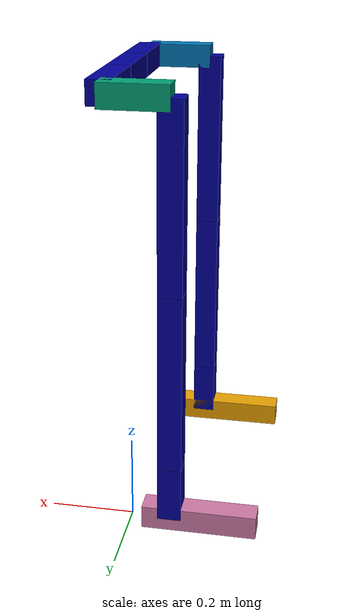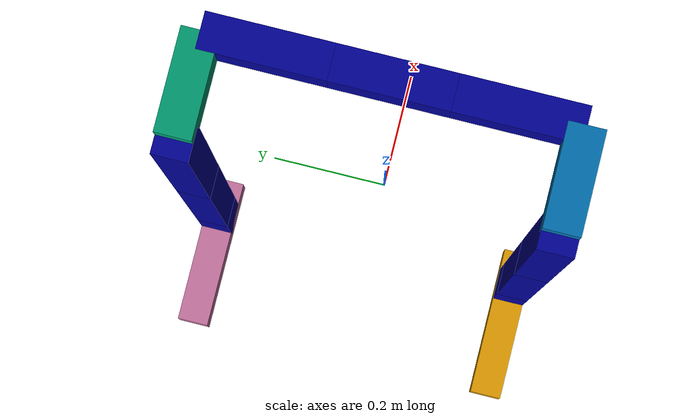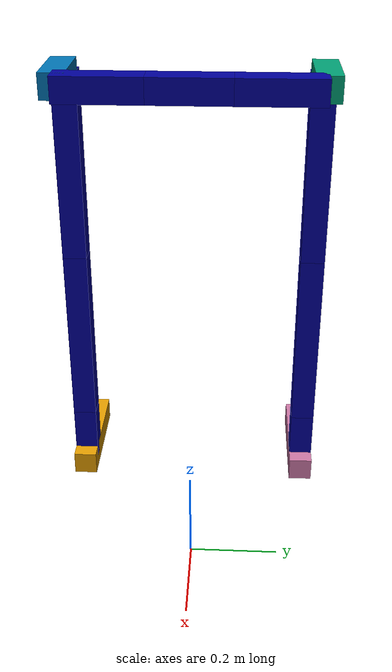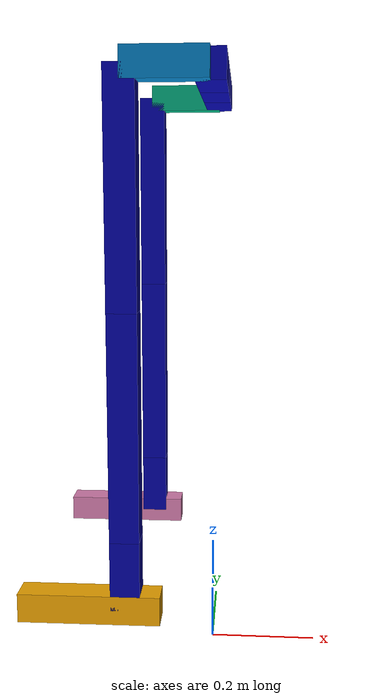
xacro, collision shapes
<?xml version="1.0"?>
<!-- Revolute-Revolute Manipulator -->
<robot name="march" xmlns:xacro="http://www.ros.org/wiki/xacro">
    <!-- Switch between airgaiting or standing on the ground-->
    <!--Value set to: 'world' fixes the robot to the world-->
    <!--Value set to: 'base_link' makes the robot stand on the ground-->
    <!--Important note: when changing value make sure rviz fixed frame is set to the same value (moveit.rviz)-->
    <xacro:property name="parent_name" value="world"/>

    <xacro:arg name="max_effort_rotary" default="20475" />
    <xacro:arg name="max_effort_linear" default="22932.0" />
    <xacro:property name="max_effort_rotary" value="$(arg max_effort_rotary)" />
    <xacro:property name="max_effort_linear" value="$(arg max_effort_linear)" />

    <xacro:arg name="k_velocity_value" default="20000.0" />
    <xacro:property name="k_velocity_value" value="$(arg k_velocity_value)" />

    <!-- Constants for robot dimensions -->
    <!-- Masses determined in https://confluence.projectmarch.nl:8443/display/41TECH/Weights+of+the+Exoskeleton -->
    <xacro:property name="width" value="0.05"/> <!-- Square dimensions (widthxwidth) of beams -->

    <xacro:property name="hip_base_height" value="0.160"/>
    <xacro:property name="hip_base_mass" value="6.089"/>
    <!-- mass = Hip base + HAA actuators -->

    <xacro:property name="hip_aa_frame_height" value="0.170"/>
    <xacro:property name="hip_aa_frame_width" value="0.1395"/>
    <xacro:property name="hip_aa_mass" value="1.407"/>
    <!-- mass = Moving hip -->

    <xacro:property name="upper_leg_height" value="0.385"/>
    <xacro:property name="upper_leg_mass" value="7.238"/>
    <!-- mass = KFE joint + HFE joint + Upper leg -->

    <xacro:property name="lower_leg_height" value="0.385"/>
    <xacro:property name="lower_leg_mass" value="2.944"/>
    <!-- mass = Ankle actuator + Lower leg -->

    <xacro:property name="ankle_plate_height" value="0.12"/>

    <xacro:property name="foot_height_forward" value="${0.184}"/>
    <xacro:property name="foot_height_backward" value="${0.059}"/>
    <xacro:property name="foot_mass" value="0.847"/>
    <!-- mass = Passive ankle + foot -->

    <!-- Center of Mass (CoM) of the parts -->
    <!-- CoM has been determined in Catia, see https://confluence.projectmarch.nl:8443/display/51/URDF+description -->
    <xacro:property name="hip_base_com_x" value="${-hip_aa_frame_width + 0.124786}"/>
    <xacro:property name="hip_base_com_y" value="0.00000911124"/>
    <xacro:property name="hip_base_com_z" value="0.152163"/>

    <xacro:property name="hip_aa_com_x" value="${-hip_aa_frame_width + 0.0669488}"/>
    <xacro:property name="hip_aa_com_y" value="${-hip_base_height/2 - hip_aa_frame_height + 0.210566}"/>
    <xacro:property name="hip_aa_com_z" value="-0.000250494"/>

    <xacro:property name="upper_leg_com_x" value="-0.00219961"/>
    <xacro:property name="upper_leg_com_y" value="${-hip_base_height/2 - hip_aa_frame_height + 0.221535}"/>
    <xacro:property name="upper_leg_com_z" value="-0.184207"/>

    <xacro:property name="lower_leg_com_x" value="-0.00434063"/>
    <xacro:property name="lower_leg_com_y" value="${-hip_base_height/2 - hip_aa_frame_height + 0.184583}"/>
    <xacro:property name="lower_leg_com_z" value="${upper_leg_height - 0.511661}"/>

    <xacro:property name="foot_com_x" value="-0.0450791"/>
    <xacro:property name="foot_com_y" value="${-hip_base_height/2 - hip_aa_frame_height + 0.147081}"/>
    <xacro:property name="foot_com_z" value="${upper_leg_height + lower_leg_height + ankle_plate_height - 0.844751}"/>

    <!-- Inertia of the parts -->
    <!-- Inertia's have been determined in Catia, see
         https://confluence.projectmarch.nl:8443/display/51/URDF+description -->
    <xacro:property name="hip_base_Ixx" value="0.117325"/>
    <xacro:property name="hip_base_Ixy" value="-0.0000239249"/>
    <xacro:property name="hip_base_Ixz" value="0.0179732"/>
    <xacro:property name="hip_base_Iyy" value="0.0745937"/>
    <xacro:property name="hip_base_Iyz" value="-0.00000472801"/>
    <xacro:property name="hip_base_Izz" value="0.0684134"/>

    <xacro:property name="hip_aa_Ixx" value="0.00841686"/>
    <xacro:property name="hip_aa_Ixy" value="0.00655578"/>
    <xacro:property name="hip_aa_Ixz" value="0.0000910634"/>
    <xacro:property name="hip_aa_Iyy" value="0.0165504"/>
    <xacro:property name="hip_aa_Iyz" value="0.0000996411"/>
    <xacro:property name="hip_aa_Izz" value="0.0229261"/>

    <xacro:property name="upper_leg_Ixx" value="0.119187"/>
    <xacro:property name="upper_leg_Ixy" value="-0.0000363676"/>
    <xacro:property name="upper_leg_Ixz" value="-0.0000393791"/>
    <xacro:property name="upper_leg_Iyy" value="0.11867"/>
    <xacro:property name="upper_leg_Iyz" value="-0.0125652"/>
    <xacro:property name="upper_leg_Izz" value="0.00881972"/>

    <xacro:property name="lower_leg_Ixx" value="0.0725438"/>
    <xacro:property name="lower_leg_Ixy" value="-0.0264923"/>
    <xacro:property name="lower_leg_Ixz" value="0.00934723"/>
    <xacro:property name="lower_leg_Iyy" value="0.108683"/>
    <xacro:property name="lower_leg_Iyz" value="0.00109811"/>
    <xacro:property name="lower_leg_Izz" value="0.0715361" />

    <xacro:property name="foot_Ixx" value="0.00414758"/>
    <xacro:property name="foot_Ixy" value="-0.00185339"/>
    <xacro:property name="foot_Ixz" value="-0.00254464"/>
    <xacro:property name="foot_Iyy" value="0.00855883"/>
    <xacro:property name="foot_Iyz" value="-0.00166213"/>
    <xacro:property name="foot_Izz" value="0.00715736" />

    <!-- Joint properties -->
    <xacro:property name="hip_fe_rotation_lower_limit" value="${-20*pi/180}"/> <!-- rad -->
    <xacro:property name="hip_fe_rotation_upper_limit" value="${100*pi/180}"/> <!-- rad -->
    <xacro:property name="hip_fe_soft_buffer" value="${3*pi/180}"/> <!-- rad -->
    <xacro:property name="hip_fe_effort_limit" value="${max_effort_rotary}"/> <!-- IU = 20 A -->
    <xacro:property name="hip_fe_velocity_limit" value="2.0"/> <!-- rad/s -->

    <xacro:property name="hip_aa_rotation_lower_limit" value="${-18*pi/180}"/> <!-- rad -->
    <xacro:property name="hip_aa_rotation_upper_limit" value="${17*pi/180}"/> <!-- rad -->
    <xacro:property name="hip_aa_soft_buffer" value="${3.5*pi/180}"/> <!-- rad -->
    <xacro:property name="hip_aa_effort_limit" value="${max_effort_linear}"/> <!-- IU = 20 A -->
    <xacro:property name="hip_aa_velocity_limit" value="1.0"/> <!-- rad/s -->

    <xacro:property name="knee_rotation_lower_limit" value="${-5*pi/180}"/>
    <xacro:property name="knee_rotation_upper_limit" value="${115*pi/180}"/>
    <xacro:property name="knee_extension_soft_buffer" value="${3.5*pi/180}"/> <!-- rad -->
    <xacro:property name="knee_flexion_soft_buffer" value="${3*pi/180}"/> <!-- rad -->
    <xacro:property name="knee_effort_limit" value="${max_effort_rotary}"/> <!-- IU = 20 A -->
    <xacro:property name="knee_velocity_limit" value="2.5"/>

    <xacro:property name="ankle_rotation_lower_limit" value="${-25*pi/180}"/>
    <xacro:property name="ankle_rotation_upper_limit" value="${15*pi/180}"/>
    <xacro:property name="ankle_dorsalflexion_soft_buffer" value="${5*pi/180}"/> <!-- rad -->
    <xacro:property name="ankle_plantarflexion_soft_buffer" value="${3*pi/180}"/> <!-- rad -->
    <xacro:property name="ankle_effort_limit" value="${max_effort_linear}"/> <!-- IU = 20 A -->
    <xacro:property name="ankle_velocity_limit" value="1.0"/>

    <xacro:property name="hover_height" value="0.3"/>

    <xacro:property name="camera_link" value="0.05"/> <!-- Size of square 'camera' box -->
    <xacro:property name="axel_offset" value="0.05"/> <!-- Space btw top of beam and the each joint -->

    <!-- Import all Gazebo-customization elements, including Gazebo colors -->
    <xacro:include filename="$(find march_description)/urdf/march.gazebo"/>

    <material name="blue">
        <color rgba="0 0 0.6 1"/>
    </material>

    <plugin name="gazebo_ros_control" filename="libgazebo_ros_control.so">
        <robotNamespace>/march</robotNamespace>
    </plugin>

    <!-- Used for fixing robot to Gazebo 'base_link' -->
    <link name="${parent_name}"/>

    <!-- Parts -->
    <!-- Hip-->
    <link name="hip_base">
        <visual>
            <origin xyz="0 0 0" rpy="0 0 ${-pi/2}"/>
            <geometry>
                <mesh filename="package://march_description/urdf/stl-files/HipBase.stl" scale="1.15 1.15 1.15"/>
            </geometry>
            <material name="blue"/>
        </visual>

        <inertial>
            <origin xyz="${hip_base_com_x} ${hip_base_com_y} ${hip_base_com_z}" rpy="0 0 0"/>
            <mass value="${hip_base_mass}"/>
            <inertia
                    ixx="${hip_base_Ixx}"
                    ixy="${hip_base_Ixy}"
                    ixz="${hip_base_Ixz}"
                    iyy="${hip_base_Iyy}"
                    iyz="${hip_base_Iyz}"
                    izz="${hip_base_Izz}" />
        </inertial>

        <collision>
            <origin xyz="0 0 0" rpy="0 0 0"/>
            <geometry>
                <box size="${width} ${hip_base_height} ${width}"/>
            </geometry>
        </collision>
    </link>

    <!-- IMU-->
    <link name="imu_link">
    </link>

    <!-- Left Moving Hip-->
    <link name="hip_aa_frame_left_side">
        <visual>
            <origin xyz="0 0 0" rpy="0 0 ${-pi/2}"/>
            <geometry>
                <mesh filename="package://march_description/urdf/stl-files/HipLeft.stl" scale="1.15 1.15 1.15"/>
            </geometry>
            <material name="blue"/>
        </visual>

        <collision>
            <origin xyz="0 ${-hip_aa_frame_height/2} 0" rpy="0 0 0"/>
            <geometry>
                <box size="${width} ${hip_aa_frame_height} ${width}"/>
            </geometry>
        </collision>
    </link>

    <link name="hip_aa_frame_left_front">
        <inertial>
            <origin xyz="${hip_aa_com_x} ${-hip_aa_com_y} ${hip_aa_com_z}" rpy="0 0 0"/>
            <mass value="${hip_aa_mass}"/>
            <inertia
                    ixx="${hip_aa_Ixx}"
                    ixy="${-hip_aa_Ixy}"
                    ixz="${hip_aa_Ixz}"
                    iyy="${hip_aa_Iyy}"
                    iyz="${-hip_aa_Iyz}"
                    izz="${hip_aa_Izz}" />
        </inertial>

        <collision>
            <origin xyz="${-hip_aa_frame_width/2} 0 0" rpy="0 0 0"/>
            <geometry>
                <box size="${hip_aa_frame_width} ${width} ${width}"/>
            </geometry>
        </collision>
    </link>

    <!-- Upper Leg Left-->
    <link name="upper_leg_left">
        <visual>
            <origin xyz="0 0 0" rpy="0 0 ${-pi/2}"/>
            <geometry>
                <mesh filename="package://march_description/urdf/stl-files/UpperLegLeft.stl" scale="1.15 1.15 1.15"/>
            </geometry>
            <material name="blue"/>
        </visual>

        <inertial>
            <origin xyz="${upper_leg_com_x} ${-upper_leg_com_y} ${upper_leg_com_z}" rpy="0 0 0"/>
            <mass value="${upper_leg_mass}"/>
            <inertia
                    ixx="${upper_leg_Ixx}"
                    ixy="${-upper_leg_Ixy}"
                    ixz="${upper_leg_Ixz}"
                    iyy="${upper_leg_Iyy}"
                    iyz="${-upper_leg_Iyz}"
                    izz="${upper_leg_Izz}" />
        </inertial>

        <collision>
            <origin xyz="0 0 ${-upper_leg_height/2}" rpy="0 0 0"/>
            <geometry>
                <box size="${width} ${width} ${upper_leg_height}"/>
            </geometry>
        </collision>
    </link>

    <!-- Lower Leg Left -->
    <link name="lower_leg_left">
        <visual>
            <origin xyz="0 0 0" rpy="0 0 ${-pi/2}"/>
            <geometry>
                <mesh filename="package://march_description/urdf/stl-files/LowerLegLeft.stl" scale="1.15 1.15 1.15"/>
            </geometry>
            <material name="blue"/>
        </visual>

        <inertial>
            <origin xyz="${lower_leg_com_x} ${-lower_leg_com_y} ${lower_leg_com_z}" rpy="0 0 0"/>
            <mass value="${lower_leg_mass}"/>
            <inertia
                    ixx="${lower_leg_Ixx}"
                    ixy="${-lower_leg_Ixy}"
                    ixz="${lower_leg_Ixz}"
                    iyy="${lower_leg_Iyy}"
                    iyz="${-lower_leg_Iyz}"
                    izz="${lower_leg_Izz}" />
        </inertial>

        <collision>
            <origin xyz="0 0 ${-lower_leg_height/2}" rpy="0 0 0"/>
            <geometry>
                <box size="${width} ${width} ${lower_leg_height}"/>
            </geometry>
        </collision>
    </link>

    <!-- Ankle plate Left -->
    <link name="ankle_plate_left">
        <visual>
            <origin xyz="0 0 0" rpy="0 0 ${-pi/2}"/>
            <geometry>
                <mesh filename="package://march_description/urdf/stl-files/FootLeft.stl" scale="1.15 1.15 1.15"/>
            </geometry>
            <material name="blue"/>
        </visual>

        <collision>
            <origin xyz="0 0 ${-ankle_plate_height/2}" rpy="0 0 0"/>
            <geometry>
                <box size="${width} ${width} ${ankle_plate_height}"/>
            </geometry>
        </collision>
    </link>

    <!-- Foot Left -->
    <link name="foot_left">
        <inertial>
            <origin xyz="${foot_com_x} ${-foot_com_y} ${foot_com_z}" rpy="0 0 0"/>
            <mass value="${foot_mass}"/>
            <inertia
                    ixx="${foot_Ixx}"
                    ixy="${-foot_Ixy}"
                    ixz="${foot_Ixz}"
                    iyy="${foot_Iyy}"
                    iyz="${-foot_Iyz}"
                    izz="${foot_Izz}" />
        </inertial>

        <collision>
            <origin xyz="${(-foot_height_forward+foot_height_backward)/2} 0 0" rpy="0 0 0"/>
            <geometry>
                <box size="${foot_height_forward+foot_height_backward} ${width} ${width}"/>
            </geometry>
        </collision>
    </link>

    <!-- Right Moving Hip-->
    <link name="hip_aa_frame_right_side">
        <visual>
            <origin xyz="0 0 0" rpy="0 0 ${-pi/2}"/>
            <geometry>
                <mesh filename="package://march_description/urdf/stl-files/HipRight.stl" scale="1.15 1.15 1.15"/>
            </geometry>
            <material name="blue"/>
        </visual>

        <collision>
            <origin xyz="0 ${hip_aa_frame_height/2} 0" rpy="0 0 0"/>
            <geometry>
                <box size="${width} ${hip_aa_frame_height} ${width}"/>
            </geometry>
        </collision>
    </link>

    <link name="hip_aa_frame_right_front">
        <inertial>
            <origin xyz="${hip_aa_com_x} ${hip_aa_com_y} ${hip_aa_com_z}" rpy="0 0 0"/>
            <mass value="${hip_aa_mass}"/>
            <inertia
                    ixx="${hip_aa_Ixx}"
                    ixy="${hip_aa_Ixy}"
                    ixz="${hip_aa_Ixz}"
                    iyy="${hip_aa_Iyy}"
                    iyz="${hip_aa_Iyz}"
                    izz="${hip_aa_Izz}" />
        </inertial>

        <collision>
            <origin xyz="${-hip_aa_frame_width/2} 0 0" rpy="0 0 0"/>
            <geometry>
                <box size="${hip_aa_frame_width} ${width} ${width}"/>
            </geometry>
        </collision>
    </link>

    <!-- Upper Leg Right-->
    <link name="upper_leg_right">
        <visual>
            <origin xyz="0 0 0" rpy="0 0 ${-pi/2}"/>
            <geometry>
                <mesh filename="package://march_description/urdf/stl-files/UpperLegRight.stl" scale="1.15 1.15 1.15"/>
            </geometry>
            <material name="blue"/>
        </visual>

        <inertial>
            <origin xyz="${upper_leg_com_x} ${upper_leg_com_y} ${upper_leg_com_z}" rpy="0 0 0"/>
            <mass value="${upper_leg_mass}"/>
            <inertia
                    ixx="${upper_leg_Ixx}"
                    ixy="${upper_leg_Ixy}"
                    ixz="${upper_leg_Ixz}"
                    iyy="${upper_leg_Iyy}"
                    iyz="${upper_leg_Iyz}"
                    izz="${upper_leg_Izz}" />
        </inertial>

        <collision>
            <origin xyz="0 0 ${-upper_leg_height/2}" rpy="0 0 0"/>
            <geometry>
                <box size="${width} ${width} ${upper_leg_height}"/>
            </geometry>
        </collision>

    </link>

    <!-- Lower Leg Right -->
    <link name="lower_leg_right">
        <visual>
            <origin xyz="0 0 0" rpy="0 0 ${-pi/2}"/>
            <geometry>
                <mesh filename="package://march_description/urdf/stl-files/LowerLegRight.stl" scale="1.15 1.15 1.15"/>
            </geometry>
            <material name="blue"/>
        </visual>

        <inertial>
            <origin xyz="${lower_leg_com_x} ${lower_leg_com_y} ${lower_leg_com_z}" rpy="0 0 0"/>
            <mass value="${lower_leg_mass}"/>
            <inertia
                    ixx="${lower_leg_Ixx}"
                    ixy="${lower_leg_Ixy}"
                    ixz="${lower_leg_Ixz}"
                    iyy="${lower_leg_Iyy}"
                    iyz="${lower_leg_Iyz}"
                    izz="${lower_leg_Izz}" />
        </inertial>

        <collision>
            <origin xyz="0 0 ${-lower_leg_height/2}" rpy="0 0 0"/>
            <geometry>
                <box size="${width} ${width} ${lower_leg_height}"/>
            </geometry>
        </collision>
    </link>

    <!-- Ankle Plate Right -->
    <link name="ankle_plate_right">
        <visual>
            <origin xyz="0 0 0" rpy="0 0 ${-pi/2}"/>
            <geometry>
                <mesh filename="package://march_description/urdf/stl-files/FootRight.stl" scale="1.15 1.15 1.15"/>
            </geometry>
            <material name="blue"/>
        </visual>

        <collision>
            <origin xyz="0 0 ${-ankle_plate_height/2}" rpy="0 0 0"/>
            <geometry>
                <box size="${width} ${width} ${ankle_plate_height}"/>
            </geometry>
        </collision>
    </link>

    <!-- Foot Right -->
    <link name="foot_right">
        <inertial>
            <origin xyz="${foot_com_x} ${foot_com_y} ${foot_com_z}" rpy="0 0 0"/>
            <mass value="${foot_mass}"/>
            <inertia
                    ixx="${foot_Ixx}"
                    ixy="${foot_Ixy}"
                    ixz="${foot_Ixz}"
                    iyy="${foot_Iyy}"
                    iyz="${foot_Iyz}"
                    izz="${foot_Izz}" />
        </inertial>
        <collision>
            <origin xyz="${(-foot_height_forward+foot_height_backward)/2} 0 0" rpy="0 0 0"/>
            <geometry>
                <box size="${foot_height_forward+foot_height_backward} ${width} ${width}"/>
            </geometry>
        </collision>
    </link>

    <!-- Joints -->
    <joint name="imu_joint" type="fixed">
        <parent link="${parent_name}"/>
        <child link="imu_link"/>
    </joint>

    <joint name="hip" type="fixed">
        <parent link="imu_link"/>
        <child link="hip_base"/>
        <origin xyz="0 0 ${lower_leg_height+upper_leg_height+hover_height}" rpy="0 0 0"/>
    </joint>

    <joint name="left_hip_aa" type="revolute">
        <parent link="hip_base"/>
        <child link="hip_aa_frame_left_side"/>
        <origin xyz="0 ${-hip_base_height/2} 0" rpy="0 0 0"/>
        <axis xyz="-1 0 0"/>
        <limit velocity="${hip_aa_velocity_limit}" effort="${hip_aa_effort_limit}" lower="${hip_aa_rotation_lower_limit}" upper="${hip_aa_rotation_upper_limit}"/>
        <safety_controller soft_lower_limit="${hip_aa_rotation_lower_limit + hip_aa_soft_buffer}" soft_upper_limit="${hip_aa_rotation_upper_limit - hip_aa_soft_buffer}" k_position="5" k_velocity="${k_velocity_value}" />

    </joint>

    <joint name="left_hip_angle" type="fixed">
        <parent link="hip_aa_frame_left_side"/>
        <child link="hip_aa_frame_left_front"/>
        <origin xyz="0 ${-hip_aa_frame_height} 0" rpy="0 0 0"/>
    </joint>

    <joint name="left_hip_fe" type="revolute">
        <parent link="hip_aa_frame_left_front"/>
        <child link="upper_leg_left"/>
        <origin xyz="${-hip_aa_frame_width} 0 0" rpy="0 0 0"/>
        <axis xyz="0 1 0"/>

        <limit velocity="${hip_fe_velocity_limit}" effort="${hip_fe_effort_limit}" lower="${hip_fe_rotation_lower_limit}" upper="${hip_fe_rotation_upper_limit}"/>
        <safety_controller soft_lower_limit="${hip_fe_rotation_lower_limit + hip_fe_soft_buffer}" soft_upper_limit="${hip_fe_rotation_upper_limit - hip_fe_soft_buffer}" k_position="5" k_velocity="${k_velocity_value}" />
    </joint>

    <joint name="left_knee" type="revolute">
        <parent link= "upper_leg_left"/>
        <child link="lower_leg_left"/>
        <origin xyz="0 0 ${-upper_leg_height}" rpy="0 0 0"/>
        <axis xyz="0 -1 0"/>

        <limit velocity="${knee_velocity_limit}" effort="${knee_effort_limit}" lower="${knee_rotation_lower_limit}" upper="${knee_rotation_upper_limit}"/>
        <safety_controller soft_lower_limit="${knee_rotation_lower_limit + knee_extension_soft_buffer}" soft_upper_limit="${knee_rotation_upper_limit - knee_flexion_soft_buffer}" k_position="5" k_velocity="${k_velocity_value}" />
    </joint>

    <joint name="left_ankle" type="revolute">
        <parent link="lower_leg_left"/>
        <child link="ankle_plate_left"/>
        <origin xyz="0 0 ${-lower_leg_height}" rpy="0 0 0"/>
        <axis xyz="0 1 0"/>

        <limit velocity="${ankle_velocity_limit}" effort="${ankle_effort_limit}" lower="${ankle_rotation_lower_limit}" upper="${ankle_rotation_upper_limit}"/>
        <safety_controller soft_lower_limit="${ankle_rotation_lower_limit + ankle_plantarflexion_soft_buffer}" soft_upper_limit="${ankle_rotation_upper_limit - ankle_dorsalflexion_soft_buffer}" k_position="5" k_velocity="${k_velocity_value}" />
    </joint>

    <joint name="left_foot_angle" type="fixed">
        <parent link="ankle_plate_left"/>
        <child link="foot_left"/>
        <origin xyz="0 0 ${-ankle_plate_height}" rpy="0 0 0"/>
    </joint>

    <joint name="right_hip_aa" type="revolute">
        <parent link="hip_base"/>
        <child link="hip_aa_frame_right_side"/>
        <origin xyz="0 ${hip_base_height/2} 0" rpy="0 0 0"/>
        <axis xyz="1 0 0"/>

        <limit velocity="${hip_aa_velocity_limit}" effort="${hip_aa_effort_limit}" lower="${hip_aa_rotation_lower_limit}" upper="${hip_aa_rotation_upper_limit}"/>
        <safety_controller soft_lower_limit="${hip_aa_rotation_lower_limit + hip_aa_soft_buffer}" soft_upper_limit="${hip_aa_rotation_upper_limit - hip_aa_soft_buffer}" k_position="5" k_velocity="${k_velocity_value}" />

    </joint>

    <joint name="right_hip_angle" type="fixed">
        <parent link="hip_aa_frame_right_side"/>
        <child link="hip_aa_frame_right_front"/>
        <origin xyz="0 ${hip_aa_frame_height} 0" rpy="0 0 0"/>
    </joint>

    <joint name="right_hip_fe" type="revolute">
        <parent link="hip_aa_frame_right_front"/>
        <child link="upper_leg_right"/>
        <origin xyz="${-hip_aa_frame_width} 0 0" rpy="0 0 0"/>
        <axis xyz="0 1 0"/>

        <limit velocity="${hip_fe_velocity_limit}" effort="${hip_fe_effort_limit}" lower="${hip_fe_rotation_lower_limit}" upper="${hip_fe_rotation_upper_limit}"/>
        <safety_controller soft_lower_limit="${hip_fe_rotation_lower_limit + hip_fe_soft_buffer}" soft_upper_limit="${hip_fe_rotation_upper_limit - hip_fe_soft_buffer}" k_position="5" k_velocity="${k_velocity_value}" />

    </joint>

    <joint name="right_knee" type="revolute">
        <parent link="upper_leg_right"/>
        <child link="lower_leg_right"/>
        <origin xyz="0 0 ${-upper_leg_height}" rpy="0 0 0"/>
        <axis xyz="0 -1 0"/>

        <limit velocity="${knee_velocity_limit}" effort="${knee_effort_limit}" lower="${knee_rotation_lower_limit}" upper="${knee_rotation_upper_limit}"/>
        <safety_controller soft_lower_limit="${knee_rotation_lower_limit + knee_extension_soft_buffer}" soft_upper_limit="${knee_rotation_upper_limit - knee_flexion_soft_buffer}" k_position="5" k_velocity="${k_velocity_value}" />
    </joint>

    <joint name="right_ankle" type="revolute">
        <parent link="lower_leg_right"/>
        <child link="ankle_plate_right"/>
        <origin xyz="0 0 ${-lower_leg_height}" rpy="0 0 0"/>
        <axis xyz="0 1 0"/>

        <limit velocity="${ankle_velocity_limit}" effort="${ankle_effort_limit}" lower="${ankle_rotation_lower_limit}" upper="${ankle_rotation_upper_limit}"/>
        <safety_controller soft_lower_limit="${ankle_rotation_lower_limit + ankle_plantarflexion_soft_buffer}" soft_upper_limit="${ankle_rotation_upper_limit - ankle_dorsalflexion_soft_buffer}" k_position="5" k_velocity="${k_velocity_value}" />
    </joint>

    <joint name="right_foot_angle" type="fixed">
        <parent link="ankle_plate_right"/>
        <child link="foot_right"/>
        <origin xyz="0 0 ${-ankle_plate_height}" rpy="0 0 0"/>
    </joint>

    <!-- ROS Control plugin for Gazebo -->
    <transmission name="left_hip_aa">
        <type>transmission_interface/SimpleTransmission</type>
        <joint name="left_hip_aa">
            <hardwareInterface>hardware_interface/EffortJointInterface</hardwareInterface>
        </joint>
        <actuator name="left_hip_aa_motor">
            <hardwareInterface>hardware_interface/EffortJointInterface</hardwareInterface>
            <mechanicalReduction>200</mechanicalReduction>
        </actuator>
    </transmission>

    <transmission name="left_hip_fe">
        <type>transmission_interface/SimpleTransmission</type>
        <joint name="left_hip_fe">
            <hardwareInterface>hardware_interface/EffortJointInterface</hardwareInterface>
        </joint>
        <actuator name="left_hip_fe_motor">
            <hardwareInterface>hardware_interface/EffortJointInterface</hardwareInterface>
            <mechanicalReduction>101</mechanicalReduction>
        </actuator>
    </transmission>

    <transmission name="left_knee">
        <type>transmission_interface/SimpleTransmission</type>
        <joint name="left_knee">
            <hardwareInterface>hardware_interface/EffortJointInterface</hardwareInterface>
        </joint>
        <actuator name="left_knee_motor">
            <hardwareInterface>hardware_interface/EffortJointInterface</hardwareInterface>
            <mechanicalReduction>101</mechanicalReduction>
        </actuator>
    </transmission>

    <transmission name="left_ankle">
        <type>transmission_interface/SimpleTransmission</type>
        <joint name="left_ankle">
            <hardwareInterface>hardware_interface/EffortJointInterface</hardwareInterface>
        </joint>
        <actuator name="left_ankle_motor">
            <hardwareInterface>hardware_interface/EffortJointInterface</hardwareInterface>
            <mechanicalReduction>200</mechanicalReduction>
        </actuator>
    </transmission>

    <transmission name="right_hip_aa">
        <type>transmission_interface/SimpleTransmission</type>
        <joint name="right_hip_aa">
            <hardwareInterface>hardware_interface/EffortJointInterface</hardwareInterface>
        </joint>
        <actuator name="right_hip_aa_motor">
            <hardwareInterface>hardware_interface/EffortJointInterface</hardwareInterface>
            <mechanicalReduction>200</mechanicalReduction>
        </actuator>
    </transmission>

    <transmission name="right_hip_fe">
        <type>transmission_interface/SimpleTransmission</type>
        <joint name="right_hip_fe">
            <hardwareInterface>hardware_interface/EffortJointInterface</hardwareInterface>
        </joint>
        <actuator name="right_hip_fe_motor">
            <hardwareInterface>hardware_interface/EffortJointInterface</hardwareInterface>
            <mechanicalReduction>101</mechanicalReduction>
        </actuator>
    </transmission>

    <transmission name="right_knee">
        <type>transmission_interface/SimpleTransmission</type>
        <joint name="right_knee">
            <hardwareInterface>hardware_interface/EffortJointInterface</hardwareInterface>
        </joint>
        <actuator name="right_knee_motor">
            <hardwareInterface>hardware_interface/EffortJointInterface</hardwareInterface>
            <mechanicalReduction>101</mechanicalReduction>
        </actuator>
    </transmission>

    <transmission name="right_ankle">
        <type>transmission_interface/SimpleTransmission</type>
        <joint name="right_ankle">
            <hardwareInterface>hardware_interface/EffortJointInterface</hardwareInterface>
        </joint>
        <actuator name="right_ankle_motor">
            <hardwareInterface>hardware_interface/EffortJointInterface</hardwareInterface>
            <mechanicalReduction>200</mechanicalReduction>
        </actuator>
    </transmission>

</robot>
